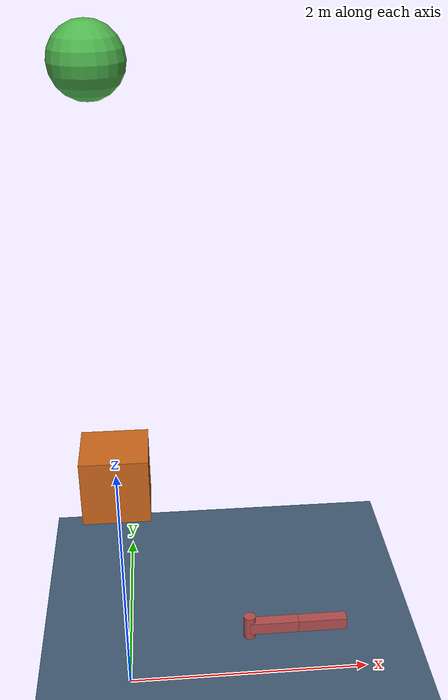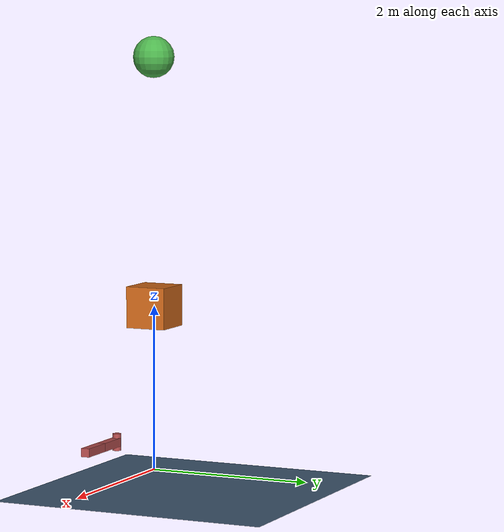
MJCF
<mujoco model="demo">
  <compiler angle="degree" coordinate="local"/>

  <!-- Gravity is enabled by default -->
  <option gravity="0 0 0" timestep="0.002">
    <flag warmstart="enable"/>
  </option>

  <!-- Visual settings -->
  <visual>
    <headlight ambient="0.5 0.5 0.5" diffuse="0.8 0.8 0.8"/>
    <rgba haze="0.15 0.25 0.35 1"/>  <!-- Haze for depth perception -->
    <global azimuth="10" elevation="-40"/>
  </visual>

  <!-- Assets: materials and textures -->
  <asset>
    <texture type="skybox" builtin="gradient" rgb1="0.3 0.5 0.7" rgb2="0 0 0" width="512" height="512"/>
    <texture name="grid" type="2d" builtin="checker" rgb1="0.2 0.3 0.4" rgb2="0.3 0.4 0.5" width="512" height="512"/>
    <material name="grid" texture="grid" texrepeat="1 1" texuniform="true" reflectance="0.2"/>
    <material name="robot" rgba="0.7 0.3 0.3 1"/>
    <material name="object" rgba="0.3 0.7 0.3 1"/>
  </asset>

  <!-- World body -->
  <worldbody>
    <!-- Floor -->
    <geom name="floor" type="plane" size="5 5 0.1" material="grid"/>

    <!-- Lighting -->
    <light pos="0 0 3" dir="0 0 -1" directional="true"/>

    <!-- Static objects -->
    <body name="static_box" pos="0 0 2">
      <geom name="box" type="box" size="0.25 0.25 0.25" rgba="0.8 0.4 0.1 1" mass="0.2"/>
    </body>

    <!-- Free-falling objects -->
    <body name="sphere" pos="0 0 5">
      <freejoint/>
      <geom name="sphere" type="sphere" size="0.25" mass="0.2" material="object"/>
    </body>
    <!-- TODO -->

    <!-- Simple 2-link robot arm -->
    <body name="arm_base" pos="1 0 0.5">
      <geom name="base" type="cylinder" size="0.05 0.1" material="robot"/>

      <!-- First link -->
      <body name="link1" pos="0.2 0 0">
        <joint name="joint1" type="hinge" axis="0 0 1" range="-180 180"/>
        <geom name="link1_geom" type="box" size="0.2 0.05 0.05" material="robot"/>

        <!-- Second link -->
        <body name="link2" pos="0.4 0 0">
          <joint name="joint2" type="hinge" axis="0 0 1" range="-180 180"/>
          <geom name="link2_geom" type="box" size="0.2 0.05 0.05" material="robot"/>
        </body>
      </body>

    </body>
    <!-- TODO -->

  </worldbody>

</mujoco>
